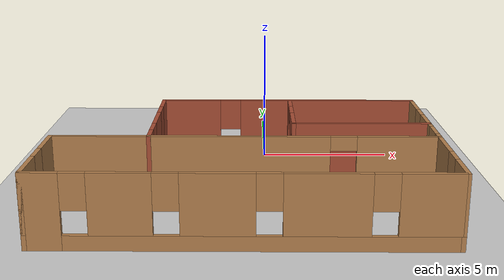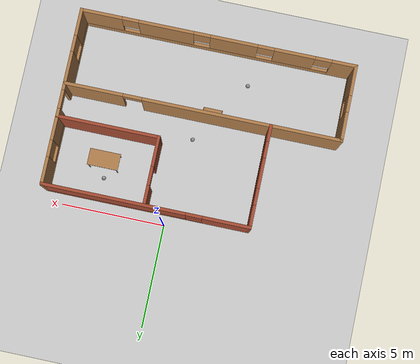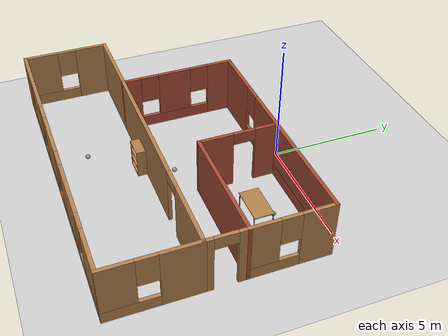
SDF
<sdf version="1.7">
 <world name="default">
  <light name="sun" type="directional">
   <pose>0 0 10 0 -0 0</pose>
   <diffuse>0.8 0.8 0.8 1</diffuse>
   <specular>0.2 0.2 0.2 1</specular>
   <attenuation>
    <range>1000</range>
    <constant>0.9</constant>
    <linear>0.01</linear>
    <quadratic>0.001</quadratic>
   </attenuation>
   <direction>-0.5 0.1 -0.9</direction>
   <spot><inner_angle>0</inner_angle><outer_angle>0</outer_angle><falloff>0</falloff></spot>
  </light>
  <model name="ground_plane">
   <static>1</static>
   <link name="link">
    <collision name="collision">
     <geometry><plane><normal>0 0 1</normal><size>100 100</size></plane></geometry>
     <surface>
      <contact><collide_bitmask>65535</collide_bitmask></contact>
      <friction><ode><mu>100</mu><mu2>50</mu2></ode></friction>
     </surface>
    </collision>
    <visual name="visual">
     <cast_shadows>0</cast_shadows>
     <geometry><plane><normal>0 0 1</normal><size>100 100</size></plane></geometry>
     <material>
      <script><uri>file://media/materials/scripts/gazebo.material</uri><name>Gazebo/Grey</name></script>
     </material>
    </visual>
   </link>
  </model>
  <gravity>0 0 -9.8</gravity>
  <magnetic_field>6e-06 2.3e-05 -4.2e-05</magnetic_field>
  <atmosphere type="adiabatic"/>
  <physics type="ode">
   <max_step_size>0.001</max_step_size>
   <real_time_factor>1</real_time_factor>
   <real_time_update_rate>1000</real_time_update_rate>
  </physics>
  <scene><ambient>0.4 0.4 0.4 1</ambient><background>0.7 0.7 0.7 1</background><shadows>1</shadows></scene>
  <spherical_coordinates>
   <surface_model>EARTH_WGS84</surface_model>
   <latitude_deg>0</latitude_deg>
   <longitude_deg>0</longitude_deg>
   <elevation>0</elevation>
   <heading_deg>0</heading_deg>
  </spherical_coordinates>
  <model name="myworld2.world">
   <pose>-0.764515 -4.55169 0 0 -0 0</pose>
   <link name="Wall_1">
    <pose>-3.25 1.54831 0 0 -0 -1.5708</pose>
    <visual name="Wall_1_Visual_0">
     <pose>-1.93275 0 1.25 0 -0 0</pose>
     <geometry><box><size>1.1345 0.15 2.5</size></box></geometry>
     <material>
      <script><uri>file://media/materials/scripts/gazebo.material</uri><name>Gazebo/Bricks</name></script>
      <ambient>1 1 1 1</ambient>
     </material>
     <meta><layer>0</layer></meta>
    </visual>
    <collision name="Wall_1_Collision_0">
     <geometry><box><size>1.1345 0.15 2.5</size></box></geometry>
     <pose>-1.93275 0 1.25 0 -0 0</pose>
    </collision>
    <visual name="Wall_1_Visual_1">
     <pose>0.567248 0 0.25 0 -0 0</pose>
     <geometry><box><size>3.8655 0.15 0.5</size></box></geometry>
     <material>
      <script><uri>file://media/materials/scripts/gazebo.material</uri><name>Gazebo/Bricks</name></script>
      <ambient>1 1 1 1</ambient>
     </material>
     <meta><layer>0</layer></meta>
    </visual>
    <collision name="Wall_1_Collision_1">
     <geometry><box><size>3.8655 0.15 0.5</size></box></geometry>
     <pose>0.567248 0 0.25 0 -0 0</pose>
    </collision>
    <visual name="Wall_1_Visual_2">
     <pose>0.154213 0 1.5 0 -0 0</pose>
     <geometry><box><size>1.43943 0.15 2</size></box></geometry>
     <material>
      <script><uri>file://media/materials/scripts/gazebo.material</uri><name>Gazebo/Bricks</name></script>
      <ambient>1 1 1 1</ambient>
     </material>
     <meta><layer>0</layer></meta>
    </visual>
    <collision name="Wall_1_Collision_2">
     <geometry><box><size>1.43943 0.15 2</size></box></geometry>
     <pose>0.154213 0 1.5 0 -0 0</pose>
    </collision>
    <visual name="Wall_1_Visual_3">
     <pose>2.08697 0 1.5 0 -0 0</pose>
     <geometry><box><size>0.82607 0.15 2</size></box></geometry>
     <material>
      <script><uri>file://media/materials/scripts/gazebo.material</uri><name>Gazebo/Bricks</name></script>
      <ambient>1 1 1 1</ambient>
     </material>
     <meta><layer>0</layer></meta>
    </visual>
    <collision name="Wall_1_Collision_3">
     <geometry><box><size>0.82607 0.15 2</size></box></geometry>
     <pose>2.08697 0 1.5 0 -0 0</pose>
    </collision>
    <visual name="Wall_1_Visual_4">
     <pose>-0.965503 0 1.9 0 -0 0</pose>
     <geometry><box><size>0.8 0.15 1.2</size></box></geometry>
     <material>
      <script><uri>file://media/materials/scripts/gazebo.material</uri><name>Gazebo/Bricks</name></script>
      <ambient>1 1 1 1</ambient>
     </material>
     <meta><layer>0</layer></meta>
    </visual>
    <collision name="Wall_1_Collision_4">
     <geometry><box><size>0.8 0.15 1.2</size></box></geometry>
     <pose>-0.965503 0 1.9 0 -0 0</pose>
    </collision>
    <visual name="Wall_1_Visual_5">
     <pose>1.27393 0 1.9 0 -0 0</pose>
     <geometry><box><size>0.8 0.15 1.2</size></box></geometry>
     <material>
      <script><uri>file://media/materials/scripts/gazebo.material</uri><name>Gazebo/Bricks</name></script>
      <ambient>1 1 1 1</ambient>
     </material>
     <meta><layer>0</layer></meta>
    </visual>
    <collision name="Wall_1_Collision_5">
     <geometry><box><size>0.8 0.15 1.2</size></box></geometry>
     <pose>1.27393 0 1.9 0 -0 0</pose>
    </collision>
   </link>
   <link name="Wall_11">
    <collision name="Wall_11_Collision">
     <geometry><box><size>3.5 0.15 2.5</size></box></geometry>
     <pose>0 0 1.25 0 -0 0</pose>
    </collision>
    <visual name="Wall_11_Visual">
     <pose>0 0 1.25 0 -0 0</pose>
     <geometry><box><size>3.5 0.15 2.5</size></box></geometry>
     <material>
      <script><uri>file://media/materials/scripts/gazebo.material</uri><name>Gazebo/Wood</name></script>
      <ambient>1 1 1 1</ambient>
     </material>
     <meta><layer>0</layer></meta>
    </visual>
    <pose>-4.925 -0.876687 0 0 -0 3.14159</pose>
   </link>
   <link name="Wall_12">
    <pose>-6.6 -2.67669 0 0 -0 -1.5708</pose>
    <visual name="Wall_12_Visual_0">
     <pose>-1.14947 0 1.25 0 -0 0</pose>
     <geometry><box><size>1.45106 0.15 2.5</size></box></geometry>
     <material>
      <script><uri>file://media/materials/scripts/gazebo.material</uri><name>Gazebo/Wood</name></script>
      <ambient>1 1 1 1</ambient>
     </material>
     <meta><layer>0</layer></meta>
    </visual>
    <collision name="Wall_12_Collision_0">
     <geometry><box><size>1.45106 0.15 2.5</size></box></geometry>
     <pose>-1.14947 0 1.25 0 -0 0</pose>
    </collision>
    <visual name="Wall_12_Visual_1">
     <pose>0.725532 0 0.25 0 -0 0</pose>
     <geometry><box><size>2.29894 0.15 0.5</size></box></geometry>
     <material>
      <script><uri>file://media/materials/scripts/gazebo.material</uri><name>Gazebo/Wood</name></script>
      <ambient>1 1 1 1</ambient>
     </material>
     <meta><layer>0</layer></meta>
    </visual>
    <collision name="Wall_12_Collision_1">
     <geometry><box><size>2.29894 0.15 0.5</size></box></geometry>
     <pose>0.725532 0 0.25 0 -0 0</pose>
    </collision>
    <visual name="Wall_12_Visual_2">
     <pose>1.12553 0 1.5 0 -0 0</pose>
     <geometry><box><size>1.49894 0.15 2</size></box></geometry>
     <material>
      <script><uri>file://media/materials/scripts/gazebo.material</uri><name>Gazebo/Wood</name></script>
      <ambient>1 1 1 1</ambient>
     </material>
     <meta><layer>0</layer></meta>
    </visual>
    <collision name="Wall_12_Collision_2">
     <geometry><box><size>1.49894 0.15 2</size></box></geometry>
     <pose>1.12553 0 1.5 0 -0 0</pose>
    </collision>
    <visual name="Wall_12_Visual_3">
     <pose>-0.023937 0 1.9 0 -0 0</pose>
     <geometry><box><size>0.8 0.15 1.2</size></box></geometry>
     <material>
      <script><uri>file://media/materials/scripts/gazebo.material</uri><name>Gazebo/Wood</name></script>
      <ambient>1 1 1 1</ambient>
     </material>
     <meta><layer>0</layer></meta>
    </visual>
    <collision name="Wall_12_Collision_3">
     <geometry><box><size>0.8 0.15 1.2</size></box></geometry>
     <pose>-0.023937 0 1.9 0 -0 0</pose>
    </collision>
   </link>
   <link name="Wall_13">
    <pose>-0.05 -4.47669 0 0 -0 0</pose>
    <visual name="Wall_13_Visual_0">
     <pose>-6.01275 0 1.25 0 -0 0</pose>
     <geometry><box><size>1.2245 0.15 2.5</size></box></geometry>
     <material>
      <script><uri>file://media/materials/scripts/gazebo.material</uri><name>Gazebo/Wood</name></script>
      <ambient>1 1 1 1</ambient>
     </material>
     <meta><layer>0</layer></meta>
    </visual>
    <collision name="Wall_13_Collision_0">
     <geometry><box><size>1.2245 0.15 2.5</size></box></geometry>
     <pose>-6.01275 0 1.25 0 -0 0</pose>
    </collision>
    <visual name="Wall_13_Visual_1">
     <pose>0.612248 0 0.25 0 -0 0</pose>
     <geometry><box><size>12.0255 0.15 0.5</size></box></geometry>
     <material>
      <script><uri>file://media/materials/scripts/gazebo.material</uri><name>Gazebo/Wood</name></script>
      <ambient>1 1 1 1</ambient>
     </material>
     <meta><layer>0</layer></meta>
    </visual>
    <collision name="Wall_13_Collision_1">
     <geometry><box><size>12.0255 0.15 0.5</size></box></geometry>
     <pose>0.612248 0 0.25 0 -0 0</pose>
    </collision>
    <visual name="Wall_13_Visual_2">
     <pose>-3.6251 0 1.5 0 -0 0</pose>
     <geometry><box><size>1.9508 0.15 2</size></box></geometry>
     <material>
      <script><uri>file://media/materials/scripts/gazebo.material</uri><name>Gazebo/Wood</name></script>
      <ambient>1 1 1 1</ambient>
     </material>
     <meta><layer>0</layer></meta>
    </visual>
    <collision name="Wall_13_Collision_2">
     <geometry><box><size>1.9508 0.15 2</size></box></geometry>
     <pose>-3.6251 0 1.5 0 -0 0</pose>
    </collision>
    <visual name="Wall_13_Visual_3">
     <pose>-0.706788 0 1.5 0 -0 0</pose>
     <geometry><box><size>2.28583 0.15 2</size></box></geometry>
     <material>
      <script><uri>file://media/materials/scripts/gazebo.material</uri><name>Gazebo/Wood</name></script>
      <ambient>1 1 1 1</ambient>
     </material>
     <meta><layer>0</layer></meta>
    </visual>
    <collision name="Wall_13_Collision_3">
     <geometry><box><size>2.28583 0.15 2</size></box></geometry>
     <pose>-0.706788 0 1.5 0 -0 0</pose>
    </collision>
    <visual name="Wall_13_Visual_4">
     <pose>2.5642 0 1.5 0 -0 0</pose>
     <geometry><box><size>2.65613 0.15 2</size></box></geometry>
     <material>
      <script><uri>file://media/materials/scripts/gazebo.material</uri><name>Gazebo/Wood</name></script>
      <ambient>1 1 1 1</ambient>
     </material>
     <meta><layer>0</layer></meta>
    </visual>
    <collision name="Wall_13_Collision_4">
     <geometry><box><size>2.65613 0.15 2</size></box></geometry>
     <pose>2.5642 0 1.5 0 -0 0</pose>
    </collision>
    <visual name="Wall_13_Visual_5">
     <pose>5.65863 0 1.5 0 -0 0</pose>
     <geometry><box><size>1.93274 0.15 2</size></box></geometry>
     <material>
      <script><uri>file://media/materials/scripts/gazebo.material</uri><name>Gazebo/Wood</name></script>
      <ambient>1 1 1 1</ambient>
     </material>
     <meta><layer>0</layer></meta>
    </visual>
    <collision name="Wall_13_Collision_5">
     <geometry><box><size>1.93274 0.15 2</size></box></geometry>
     <pose>5.65863 0 1.5 0 -0 0</pose>
    </collision>
    <visual name="Wall_13_Visual_6">
     <pose>-5.0005 0 1.9 0 -0 0</pose>
     <geometry><box><size>0.8 0.15 1.2</size></box></geometry>
     <material>
      <script><uri>file://media/materials/scripts/gazebo.material</uri><name>Gazebo/Wood</name></script>
      <ambient>1 1 1 1</ambient>
     </material>
     <meta><layer>0</layer></meta>
    </visual>
    <collision name="Wall_13_Collision_6">
     <geometry><box><size>0.8 0.15 1.2</size></box></geometry>
     <pose>-5.0005 0 1.9 0 -0 0</pose>
    </collision>
    <visual name="Wall_13_Visual_7">
     <pose>-2.2497 0 1.9 0 -0 0</pose>
     <geometry><box><size>0.8 0.15 1.2</size></box></geometry>
     <material>
      <script><uri>file://media/materials/scripts/gazebo.material</uri><name>Gazebo/Wood</name></script>
      <ambient>1 1 1 1</ambient>
     </material>
     <meta><layer>0</layer></meta>
    </visual>
    <collision name="Wall_13_Collision_7">
     <geometry><box><size>0.8 0.15 1.2</size></box></geometry>
     <pose>-2.2497 0 1.9 0 -0 0</pose>
    </collision>
    <visual name="Wall_13_Visual_8">
     <pose>0.836129 0 1.9 0 -0 0</pose>
     <geometry><box><size>0.8 0.15 1.2</size></box></geometry>
     <material>
      <script><uri>file://media/materials/scripts/gazebo.material</uri><name>Gazebo/Wood</name></script>
      <ambient>1 1 1 1</ambient>
     </material>
     <meta><layer>0</layer></meta>
    </visual>
    <collision name="Wall_13_Collision_8">
     <geometry><box><size>0.8 0.15 1.2</size></box></geometry>
     <pose>0.836129 0 1.9 0 -0 0</pose>
    </collision>
    <visual name="Wall_13_Visual_9">
     <pose>4.29226 0 1.9 0 -0 0</pose>
     <geometry><box><size>0.8 0.15 1.2</size></box></geometry>
     <material>
      <script><uri>file://media/materials/scripts/gazebo.material</uri><name>Gazebo/Wood</name></script>
      <ambient>1 1 1 1</ambient>
     </material>
     <meta><layer>0</layer></meta>
    </visual>
    <collision name="Wall_13_Collision_9">
     <geometry><box><size>0.8 0.15 1.2</size></box></geometry>
     <pose>4.29226 0 1.9 0 -0 0</pose>
    </collision>
   </link>
   <link name="Wall_15">
    <pose>6.6 -2.67669 0 0 -0 -1.5708</pose>
    <visual name="Wall_15_Visual_0">
     <pose>-1.07012 0 1.25 0 -0 0</pose>
     <geometry><box><size>1.60976 0.15 2.5</size></box></geometry>
     <material>
      <script><uri>file://media/materials/scripts/gazebo.material</uri><name>Gazebo/Wood</name></script>
      <ambient>1 1 1 1</ambient>
     </material>
     <meta><layer>0</layer></meta>
    </visual>
    <collision name="Wall_15_Collision_0">
     <geometry><box><size>1.60976 0.15 2.5</size></box></geometry>
     <pose>-1.07012 0 1.25 0 -0 0</pose>
    </collision>
    <visual name="Wall_15_Visual_1">
     <pose>0.804882 0 0.25 0 -0 0</pose>
     <geometry><box><size>2.14024 0.15 0.5</size></box></geometry>
     <material>
      <script><uri>file://media/materials/scripts/gazebo.material</uri><name>Gazebo/Wood</name></script>
      <ambient>1 1 1 1</ambient>
     </material>
     <meta><layer>0</layer></meta>
    </visual>
    <collision name="Wall_15_Collision_1">
     <geometry><box><size>2.14024 0.15 0.5</size></box></geometry>
     <pose>0.804882 0 0.25 0 -0 0</pose>
    </collision>
    <visual name="Wall_15_Visual_2">
     <pose>1.20488 0 1.5 0 -0 0</pose>
     <geometry><box><size>1.34024 0.15 2</size></box></geometry>
     <material>
      <script><uri>file://media/materials/scripts/gazebo.material</uri><name>Gazebo/Wood</name></script>
      <ambient>1 1 1 1</ambient>
     </material>
     <meta><layer>0</layer></meta>
    </visual>
    <collision name="Wall_15_Collision_2">
     <geometry><box><size>1.34024 0.15 2</size></box></geometry>
     <pose>1.20488 0 1.5 0 -0 0</pose>
    </collision>
    <visual name="Wall_15_Visual_3">
     <pose>0.134763 0 1.9 0 -0 0</pose>
     <geometry><box><size>0.8 0.15 1.2</size></box></geometry>
     <material>
      <script><uri>file://media/materials/scripts/gazebo.material</uri><name>Gazebo/Wood</name></script>
      <ambient>1 1 1 1</ambient>
     </material>
     <meta><layer>0</layer></meta>
    </visual>
    <collision name="Wall_15_Collision_3">
     <geometry><box><size>0.8 0.15 1.2</size></box></geometry>
     <pose>0.134763 0 1.9 0 -0 0</pose>
    </collision>
   </link>
   <link name="Wall_2">
    <pose>1.675 -0.876687 0 0 -0 0</pose>
    <visual name="Wall_2_Visual_0">
     <pose>-1.8822 0 1.25 0 -0 0</pose>
     <geometry><box><size>6.2356 0.15 2.5</size></box></geometry>
     <material>
      <script><uri>file://media/materials/scripts/gazebo.material</uri><name>Gazebo/Wood</name></script>
      <ambient>1 1 1 1</ambient>
     </material>
     <meta><layer>0</layer></meta>
    </visual>
    <collision name="Wall_2_Collision_0">
     <geometry><box><size>6.2356 0.15 2.5</size></box></geometry>
     <pose>-1.8822 0 1.25 0 -0 0</pose>
    </collision>
    <visual name="Wall_2_Visual_1">
     <pose>3.5678 0 1.25 0 -0 0</pose>
     <geometry><box><size>2.8644 0.15 2.5</size></box></geometry>
     <material>
      <script><uri>file://media/materials/scripts/gazebo.material</uri><name>Gazebo/Wood</name></script>
      <ambient>1 1 1 1</ambient>
     </material>
     <meta><layer>0</layer></meta>
    </visual>
    <collision name="Wall_2_Collision_1">
     <geometry><box><size>2.8644 0.15 2.5</size></box></geometry>
     <pose>3.5678 0 1.25 0 -0 0</pose>
    </collision>
    <visual name="Wall_2_Visual_2">
     <pose>1.6856 0 2.25 0 -0 0</pose>
     <geometry><box><size>0.9 0.15 0.5</size></box></geometry>
     <material>
      <script><uri>file://media/materials/scripts/gazebo.material</uri><name>Gazebo/Wood</name></script>
      <ambient>1 1 1 1</ambient>
     </material>
     <meta><layer>0</layer></meta>
    </visual>
    <collision name="Wall_2_Collision_2">
     <geometry><box><size>0.9 0.15 0.5</size></box></geometry>
     <pose>1.6856 0 2.25 0 -0 0</pose>
    </collision>
   </link>
   <link name="Wall_3">
    <pose>6.6 -0.076687 0 0 -0 1.5708</pose>
    <visual name="Wall_3_Visual_0">
     <pose>-0.672115 0 1.25 0 -0 0</pose>
     <geometry><box><size>0.40577 0.15 2.5</size></box></geometry>
     <material>
      <script><uri>file://media/materials/scripts/gazebo.material</uri><name>Gazebo/Wood</name></script>
      <ambient>1 1 1 1</ambient>
     </material>
     <meta><layer>0</layer></meta>
    </visual>
    <collision name="Wall_3_Collision_0">
     <geometry><box><size>0.40577 0.15 2.5</size></box></geometry>
     <pose>-0.672115 0 1.25 0 -0 0</pose>
    </collision>
    <visual name="Wall_3_Visual_1">
     <pose>0.652885 0 1.25 0 -0 0</pose>
     <geometry><box><size>0.44423 0.15 2.5</size></box></geometry>
     <material>
      <script><uri>file://media/materials/scripts/gazebo.material</uri><name>Gazebo/Wood</name></script>
      <ambient>1 1 1 1</ambient>
     </material>
     <meta><layer>0</layer></meta>
    </visual>
    <collision name="Wall_3_Collision_1">
     <geometry><box><size>0.44423 0.15 2.5</size></box></geometry>
     <pose>0.652885 0 1.25 0 -0 0</pose>
    </collision>
    <visual name="Wall_3_Visual_2">
     <pose>-0.01923 0 2.25 0 -0 0</pose>
     <geometry><box><size>0.9 0.15 0.5</size></box></geometry>
     <material>
      <script><uri>file://media/materials/scripts/gazebo.material</uri><name>Gazebo/Wood</name></script>
      <ambient>1 1 1 1</ambient>
     </material>
     <meta><layer>0</layer></meta>
    </visual>
    <collision name="Wall_3_Collision_2">
     <geometry><box><size>0.9 0.15 0.5</size></box></geometry>
     <pose>-0.01923 0 2.25 0 -0 0</pose>
    </collision>
   </link>
   <link name="Wall_4">
    <collision name="Wall_4_Collision">
     <geometry><box><size>5 0.15 2.5</size></box></geometry>
     <pose>0 0 1.25 0 -0 0</pose>
    </collision>
    <visual name="Wall_4_Visual">
     <pose>0 0 1.25 0 -0 0</pose>
     <geometry><box><size>5 0.15 2.5</size></box></geometry>
     <material>
      <script><uri>file://media/materials/scripts/gazebo.material</uri><name>Gazebo/Bricks</name></script>
      <ambient>1 1 1 1</ambient>
     </material>
     <meta><layer>0</layer></meta>
    </visual>
    <pose>4.175 0.723313 0 0 -0 3.14159</pose>
   </link>
   <link name="Wall_6">
    <pose>1.675 3.97331 0 0 -0 0</pose>
    <visual name="Wall_6_Visual_0">
     <pose>-3.84008 0 1.25 0 -0 0</pose>
     <geometry><box><size>2.31985 0.15 2.5</size></box></geometry>
     <material>
      <script><uri>file://media/materials/scripts/gazebo.material</uri><name>Gazebo/Bricks</name></script>
      <ambient>1 1 1 1</ambient>
     </material>
     <meta><layer>0</layer></meta>
    </visual>
    <collision name="Wall_6_Collision_0">
     <geometry><box><size>2.31985 0.15 2.5</size></box></geometry>
     <pose>-3.84008 0 1.25 0 -0 0</pose>
    </collision>
    <visual name="Wall_6_Visual_1">
     <pose>1.15992 0 0.25 0 -0 0</pose>
     <geometry><box><size>7.68015 0.15 0.5</size></box></geometry>
     <material>
      <script><uri>file://media/materials/scripts/gazebo.material</uri><name>Gazebo/Bricks</name></script>
      <ambient>1 1 1 1</ambient>
     </material>
     <meta><layer>0</layer></meta>
    </visual>
    <collision name="Wall_6_Collision_1">
     <geometry><box><size>7.68015 0.15 0.5</size></box></geometry>
     <pose>1.15992 0 0.25 0 -0 0</pose>
    </collision>
    <visual name="Wall_6_Visual_2">
     <pose>1.55992 0 1.5 0 -0 0</pose>
     <geometry><box><size>6.88015 0.15 2</size></box></geometry>
     <material>
      <script><uri>file://media/materials/scripts/gazebo.material</uri><name>Gazebo/Bricks</name></script>
      <ambient>1 1 1 1</ambient>
     </material>
     <meta><layer>0</layer></meta>
    </visual>
    <collision name="Wall_6_Collision_2">
     <geometry><box><size>6.88015 0.15 2</size></box></geometry>
     <pose>1.55992 0 1.5 0 -0 0</pose>
    </collision>
    <visual name="Wall_6_Visual_3">
     <pose>-2.28015 0 1.9 0 -0 0</pose>
     <geometry><box><size>0.8 0.15 1.2</size></box></geometry>
     <material>
      <script><uri>file://media/materials/scripts/gazebo.material</uri><name>Gazebo/Bricks</name></script>
      <ambient>1 1 1 1</ambient>
     </material>
     <meta><layer>0</layer></meta>
    </visual>
    <collision name="Wall_6_Collision_3">
     <geometry><box><size>0.8 0.15 1.2</size></box></geometry>
     <pose>-2.28015 0 1.9 0 -0 0</pose>
    </collision>
   </link>
   <link name="Wall_7">
    <pose>6.6 2.34831 0 0 -0 -1.5708</pose>
    <visual name="Wall_7_Visual_0">
     <pose>-1.01814 0 1.25 0 -0 0</pose>
     <geometry><box><size>1.36373 0.15 2.5</size></box></geometry>
     <material>
      <script><uri>file://media/materials/scripts/gazebo.material</uri><name>Gazebo/Wood</name></script>
      <ambient>1 1 1 1</ambient>
     </material>
     <meta><layer>0</layer></meta>
    </visual>
    <collision name="Wall_7_Collision_0">
     <geometry><box><size>1.36373 0.15 2.5</size></box></geometry>
     <pose>-1.01814 0 1.25 0 -0 0</pose>
    </collision>
    <visual name="Wall_7_Visual_1">
     <pose>0.681865 0 0.25 0 -0 0</pose>
     <geometry><box><size>2.03627 0.15 0.5</size></box></geometry>
     <material>
      <script><uri>file://media/materials/scripts/gazebo.material</uri><name>Gazebo/Wood</name></script>
      <ambient>1 1 1 1</ambient>
     </material>
     <meta><layer>0</layer></meta>
    </visual>
    <collision name="Wall_7_Collision_1">
     <geometry><box><size>2.03627 0.15 0.5</size></box></geometry>
     <pose>0.681865 0 0.25 0 -0 0</pose>
    </collision>
    <visual name="Wall_7_Visual_2">
     <pose>1.08187 0 1.5 0 -0 0</pose>
     <geometry><box><size>1.23627 0.15 2</size></box></geometry>
     <material>
      <script><uri>file://media/materials/scripts/gazebo.material</uri><name>Gazebo/Wood</name></script>
      <ambient>1 1 1 1</ambient>
     </material>
     <meta><layer>0</layer></meta>
    </visual>
    <collision name="Wall_7_Collision_2">
     <geometry><box><size>1.23627 0.15 2</size></box></geometry>
     <pose>1.08187 0 1.5 0 -0 0</pose>
    </collision>
    <visual name="Wall_7_Visual_3">
     <pose>0.06373 0 1.9 0 -0 0</pose>
     <geometry><box><size>0.8 0.15 1.2</size></box></geometry>
     <material>
      <script><uri>file://media/materials/scripts/gazebo.material</uri><name>Gazebo/Wood</name></script>
      <ambient>1 1 1 1</ambient>
     </material>
     <meta><layer>0</layer></meta>
    </visual>
    <collision name="Wall_7_Collision_3">
     <geometry><box><size>0.8 0.15 1.2</size></box></geometry>
     <pose>0.06373 0 1.9 0 -0 0</pose>
    </collision>
   </link>
   <link name="Wall_9">
    <pose>1.75 2.27331 0 0 -0 1.5708</pose>
    <visual name="Wall_9_Visual_0">
     <pose>-0.881982 0 1.25 0 -0 0</pose>
     <geometry><box><size>1.48604 0.15 2.5</size></box></geometry>
     <material>
      <script><uri>file://media/materials/scripts/gazebo.material</uri><name>Gazebo/Bricks</name></script>
      <ambient>1 1 1 1</ambient>
     </material>
     <meta><layer>0</layer></meta>
    </visual>
    <collision name="Wall_9_Collision_0">
     <geometry><box><size>1.48604 0.15 2.5</size></box></geometry>
     <pose>-0.881982 0 1.25 0 -0 0</pose>
    </collision>
    <visual name="Wall_9_Visual_1">
     <pose>1.19302 0 1.25 0 -0 0</pose>
     <geometry><box><size>0.863963 0.15 2.5</size></box></geometry>
     <material>
      <script><uri>file://media/materials/scripts/gazebo.material</uri><name>Gazebo/Bricks</name></script>
      <ambient>1 1 1 1</ambient>
     </material>
     <meta><layer>0</layer></meta>
    </visual>
    <collision name="Wall_9_Collision_1">
     <geometry><box><size>0.863963 0.15 2.5</size></box></geometry>
     <pose>1.19302 0 1.25 0 -0 0</pose>
    </collision>
    <visual name="Wall_9_Visual_2">
     <pose>0.311037 0 2.25 0 -0 0</pose>
     <geometry><box><size>0.9 0.15 0.5</size></box></geometry>
     <material>
      <script><uri>file://media/materials/scripts/gazebo.material</uri><name>Gazebo/Bricks</name></script>
      <ambient>1 1 1 1</ambient>
     </material>
     <meta><layer>0</layer></meta>
    </visual>
    <collision name="Wall_9_Collision_2">
     <geometry><box><size>0.9 0.15 0.5</size></box></geometry>
     <pose>0.311037 0 2.25 0 -0 0</pose>
    </collision>
   </link>
   <static>1</static>
  </model>
  <model name="table">
   <static>1</static>
   <link name="link">
    <collision name="surface">
     <pose>0 0 1 0 -0 0</pose>
     <geometry><box><size>1.5 0.8 0.03</size></box></geometry>
     <surface><friction><ode><mu>0.6</mu><mu2>0.6</mu2></ode></friction></surface>
    </collision>
    <visual name="visual1">
     <pose>0 0 1 0 -0 0</pose>
     <geometry><box><size>1.5 0.8 0.03</size></box></geometry>
     <material>
      <script><uri>file://media/materials/scripts/gazebo.material</uri><name>Gazebo/Wood</name></script>
     </material>
    </visual>
    <collision name="front_left_leg">
     <pose>0.68 0.38 0.5 0 -0 0</pose>
     <geometry><cylinder><radius>0.02</radius><length>1</length></cylinder></geometry>
    </collision>
    <visual name="front_left_leg">
     <pose>0.68 0.38 0.5 0 -0 0</pose>
     <geometry><cylinder><radius>0.02</radius><length>1</length></cylinder></geometry>
     <material>
      <script><uri>file://media/materials/scripts/gazebo.material</uri><name>Gazebo/Grey</name></script>
     </material>
    </visual>
    <collision name="front_right_leg">
     <pose>0.68 -0.38 0.5 0 -0 0</pose>
     <geometry><cylinder><radius>0.02</radius><length>1</length></cylinder></geometry>
    </collision>
    <visual name="front_right_leg">
     <pose>0.68 -0.38 0.5 0 -0 0</pose>
     <geometry><cylinder><radius>0.02</radius><length>1</length></cylinder></geometry>
     <material>
      <script><uri>file://media/materials/scripts/gazebo.material</uri><name>Gazebo/Grey</name></script>
     </material>
    </visual>
    <collision name="back_right_leg">
     <pose>-0.68 -0.38 0.5 0 -0 0</pose>
     <geometry><cylinder><radius>0.02</radius><length>1</length></cylinder></geometry>
    </collision>
    <visual name="back_right_leg">
     <pose>-0.68 -0.38 0.5 0 -0 0</pose>
     <geometry><cylinder><radius>0.02</radius><length>1</length></cylinder></geometry>
     <material>
      <script><uri>file://media/materials/scripts/gazebo.material</uri><name>Gazebo/Grey</name></script>
     </material>
    </visual>
    <collision name="back_left_leg">
     <pose>-0.68 0.38 0.5 0 -0 0</pose>
     <geometry><cylinder><radius>0.02</radius><length>1</length></cylinder></geometry>
    </collision>
    <visual name="back_left_leg">
     <pose>-0.68 0.38 0.5 0 -0 0</pose>
     <geometry><cylinder><radius>0.02</radius><length>1</length></cylinder></geometry>
     <material>
      <script><uri>file://media/materials/scripts/gazebo.material</uri><name>Gazebo/Grey</name></script>
     </material>
    </visual>
   </link>
   <pose>3.42637 -2.45714 0 0 -0 0</pose>
  </model>
  <model name="bookshelf">
   <static>1</static>
   <link name="link">
    <inertial><mass>1</mass></inertial>
    <collision name="back">
     <pose>0 0.005 0.6 0 -0 0</pose>
     <geometry><box><size>0.9 0.01 1.2</size></box></geometry>
    </collision>
    <visual name="visual1">
     <pose>0 0.005 0.6 0 -0 0</pose>
     <geometry><box><size>0.9 0.01 1.2</size></box></geometry>
     <material>
      <script><uri>file://media/materials/scripts/gazebo.material</uri><name>Gazebo/Wood</name></script>
     </material>
    </visual>
    <collision name="left_side">
     <pose>0.45 -0.195 0.6 0 -0 0</pose>
     <geometry><box><size>0.02 0.4 1.2</size></box></geometry>
    </collision>
    <visual name="visual2">
     <pose>0.45 -0.195 0.6 0 -0 0</pose>
     <geometry><box><size>0.02 0.4 1.2</size></box></geometry>
     <material>
      <script><uri>file://media/materials/scripts/gazebo.material</uri><name>Gazebo/Wood</name></script>
     </material>
    </visual>
    <collision name="right_side">
     <pose>-0.45 -0.195 0.6 0 -0 0</pose>
     <geometry><box><size>0.02 0.4 1.2</size></box></geometry>
    </collision>
    <visual name="visual3">
     <pose>-0.45 -0.195 0.6 0 -0 0</pose>
     <geometry><box><size>0.02 0.4 1.2</size></box></geometry>
     <material>
      <script><uri>file://media/materials/scripts/gazebo.material</uri><name>Gazebo/Wood</name></script>
     </material>
    </visual>
    <collision name="bottom">
     <pose>0 -0.195 0.03 0 -0 0</pose>
     <geometry><box><size>0.88 0.4 0.06</size></box></geometry>
    </collision>
    <visual name="visual4">
     <pose>0 -0.195 0.03 0 -0 0</pose>
     <geometry><box><size>0.88 0.4 0.06</size></box></geometry>
     <material>
      <script><uri>file://media/materials/scripts/gazebo.material</uri><name>Gazebo/Wood</name></script>
     </material>
    </visual>
    <collision name="top">
     <pose>0 -0.195 1.19 0 -0 0</pose>
     <geometry><box><size>0.88 0.4 0.02</size></box></geometry>
    </collision>
    <visual name="visual5">
     <pose>0 -0.195 1.19 0 -0 0</pose>
     <geometry><box><size>0.88 0.4 0.02</size></box></geometry>
     <material>
      <script><uri>file://media/materials/scripts/gazebo.material</uri><name>Gazebo/Wood</name></script>
     </material>
    </visual>
    <collision name="low_shelf">
     <pose>0 -0.195 0.43 0 -0 0</pose>
     <geometry><box><size>0.88 0.4 0.02</size></box></geometry>
    </collision>
    <visual name="visual6">
     <pose>0 -0.195 0.43 0 -0 0</pose>
     <geometry><box><size>0.88 0.4 0.02</size></box></geometry>
     <material>
      <script><uri>file://media/materials/scripts/gazebo.material</uri><name>Gazebo/Wood</name></script>
     </material>
    </visual>
    <collision name="high_shelf">
     <pose>0 -0.195 0.8 0 -0 0</pose>
     <geometry><box><size>0.88 0.4 0.02</size></box></geometry>
    </collision>
    <visual name="visual7">
     <pose>0 -0.195 0.8 0 -0 0</pose>
     <geometry><box><size>0.88 0.4 0.02</size></box></geometry>
     <material>
      <script><uri>file://media/materials/scripts/gazebo.material</uri><name>Gazebo/Wood</name></script>
     </material>
    </visual>
   </link>
   <pose>-1.18659 -5.50273 0 0 -0 0</pose>
  </model>
  <model name="my_ball">
   <link name="link_0">
    <inertial>
     <mass>1</mass>
     <inertia><ixx>0.1</ixx><ixy>0</ixy><ixz>0</ixz><iyy>0.1</iyy><iyz>0</iyz><izz>0.1</izz></inertia>
    </inertial>
    <visual name="visual">
     <geometry><sphere><radius>0.1</radius></sphere></geometry>
     <material>
      <lighting>1</lighting>
      <script><uri>file://media/materials/scripts/gazebo.material</uri><name>Gazebo/Grey</name></script>
      <shader type="pixel"><normal_map>__default__</normal_map></shader>
      <ambient>1 1 1 1</ambient>
      <diffuse>1 1 1 1</diffuse>
      <specular>1 1 1 1</specular>
      <emissive>0 0 0 1</emissive>
     </material>
    </visual>
    <collision name="collision">
     <geometry><sphere><radius>0.1</radius></sphere></geometry>
     <surface>
      <friction>
       <ode><mu>1</mu><mu2>1</mu2><fdir1>0 0 0</fdir1><slip1>0</slip1><slip2>0</slip2></ode>
       <torsional>
        <coefficient>1</coefficient>
        <patch_radius>0</patch_radius>
        <surface_radius>0</surface_radius>
        <use_patch_radius>1</use_patch_radius>
        <ode><slip>0</slip></ode>
       </torsional>
      </friction>
      <bounce><restitution_coefficient>0</restitution_coefficient><threshold>1e+06</threshold></bounce>
      <contact>
       <collide_without_contact>0</collide_without_contact>
       <collide_without_contact_bitmask>1</collide_without_contact_bitmask>
       <collide_bitmask>1</collide_bitmask>
       <ode>
        <soft_cfm>0</soft_cfm>
        <soft_erp>0.2</soft_erp>
        <kp>1e+13</kp>
        <kd>1</kd>
        <max_vel>0.01</max_vel>
        <min_depth>0</min_depth>
       </ode>
       <bullet>
        <split_impulse>1</split_impulse>
        <split_impulse_penetration_threshold>-0.01</split_impulse_penetration_threshold>
        <soft_cfm>0</soft_cfm>
        <soft_erp>0.2</soft_erp>
        <kp>1e+13</kp>
        <kd>1</kd>
       </bullet>
      </contact>
     </surface>
    </collision>
   </link>
   <static>0</static>
   <pose>-2.59234 -7.56639 0.1 0 -0 0</pose>
  </model>
  <model name="my_ball_0">
   <link name="link_0">
    <inertial>
     <mass>1</mass>
     <inertia><ixx>0.1</ixx><ixy>0</ixy><ixz>0</ixz><iyy>0.1</iyy><iyz>0</iyz><izz>0.1</izz></inertia>
    </inertial>
    <visual name="visual">
     <geometry><sphere><radius>0.1</radius></sphere></geometry>
     <material>
      <lighting>1</lighting>
      <script><uri>file://media/materials/scripts/gazebo.material</uri><name>Gazebo/Grey</name></script>
      <shader type="pixel"><normal_map>__default__</normal_map></shader>
      <ambient>1 1 1 1</ambient>
      <diffuse>1 1 1 1</diffuse>
      <specular>1 1 1 1</specular>
      <emissive>0 0 0 1</emissive>
     </material>
    </visual>
    <collision name="collision">
     <geometry><sphere><radius>0.1</radius></sphere></geometry>
     <surface>
      <friction>
       <ode><mu>1</mu><mu2>1</mu2><fdir1>0 0 0</fdir1><slip1>0</slip1><slip2>0</slip2></ode>
       <torsional>
        <coefficient>1</coefficient>
        <patch_radius>0</patch_radius>
        <surface_radius>0</surface_radius>
        <use_patch_radius>1</use_patch_radius>
        <ode><slip>0</slip></ode>
       </torsional>
      </friction>
      <bounce><restitution_coefficient>0</restitution_coefficient><threshold>1e+06</threshold></bounce>
      <contact>
       <collide_without_contact>0</collide_without_contact>
       <collide_without_contact_bitmask>1</collide_without_contact_bitmask>
       <collide_bitmask>1</collide_bitmask>
       <ode>
        <soft_cfm>0</soft_cfm>
        <soft_erp>0.2</soft_erp>
        <kp>1e+13</kp>
        <kd>1</kd>
        <max_vel>0.01</max_vel>
        <min_depth>0</min_depth>
       </ode>
       <bullet>
        <split_impulse>1</split_impulse>
        <split_impulse_penetration_threshold>-0.01</split_impulse_penetration_threshold>
        <soft_cfm>0</soft_cfm>
        <soft_erp>0.2</soft_erp>
        <kp>1e+13</kp>
        <kd>1</kd>
       </bullet>
      </contact>
     </surface>
    </collision>
   </link>
   <static>0</static>
   <pose>-0.491627 -4.40029 0.1 0 -0 0</pose>
  </model>
  <model name="my_ball_1">
   <link name="link_0">
    <inertial>
     <mass>1</mass>
     <inertia><ixx>0.1</ixx><ixy>0</ixy><ixz>0</ixz><iyy>0.1</iyy><iyz>0</iyz><izz>0.1</izz></inertia>
    </inertial>
    <visual name="visual">
     <geometry><sphere><radius>0.1</radius></sphere></geometry>
     <material>
      <lighting>1</lighting>
      <script><uri>file://media/materials/scripts/gazebo.material</uri><name>Gazebo/Grey</name></script>
      <shader type="pixel"><normal_map>__default__</normal_map></shader>
      <ambient>1 1 1 1</ambient>
      <diffuse>1 1 1 1</diffuse>
      <specular>1 1 1 1</specular>
      <emissive>0 0 0 1</emissive>
     </material>
    </visual>
    <collision name="collision">
     <geometry><sphere><radius>0.1</radius></sphere></geometry>
     <surface>
      <friction>
       <ode><mu>1</mu><mu2>1</mu2><fdir1>0 0 0</fdir1><slip1>0</slip1><slip2>0</slip2></ode>
       <torsional>
        <coefficient>1</coefficient>
        <patch_radius>0</patch_radius>
        <surface_radius>0</surface_radius>
        <use_patch_radius>1</use_patch_radius>
        <ode><slip>0</slip></ode>
       </torsional>
      </friction>
      <bounce><restitution_coefficient>0</restitution_coefficient><threshold>1e+06</threshold></bounce>
      <contact>
       <collide_without_contact>0</collide_without_contact>
       <collide_without_contact_bitmask>1</collide_without_contact_bitmask>
       <collide_bitmask>1</collide_bitmask>
       <ode>
        <soft_cfm>0</soft_cfm>
        <soft_erp>0.2</soft_erp>
        <kp>1e+13</kp>
        <kd>1</kd>
        <max_vel>0.01</max_vel>
        <min_depth>0</min_depth>
       </ode>
       <bullet>
        <split_impulse>1</split_impulse>
        <split_impulse_penetration_threshold>-0.01</split_impulse_penetration_threshold>
        <soft_cfm>0</soft_cfm>
        <soft_erp>0.2</soft_erp>
        <kp>1e+13</kp>
        <kd>1</kd>
       </bullet>
      </contact>
     </surface>
    </collision>
   </link>
   <static>0</static>
   <pose>3.33299 -1.66091 0.1 0 -0 0</pose>
  </model>
 </world>
</sdf>
